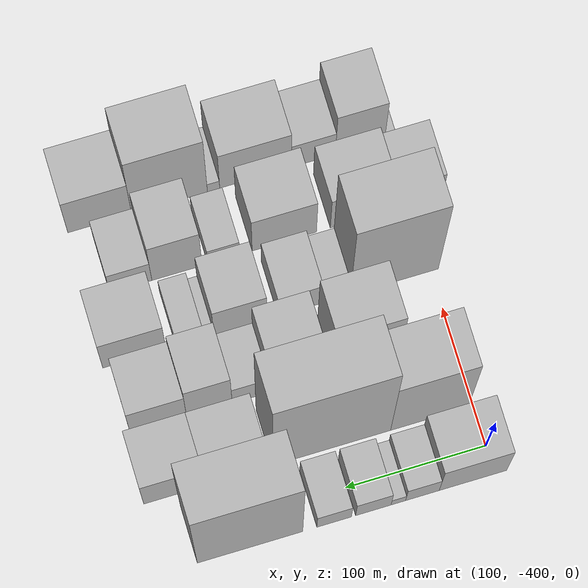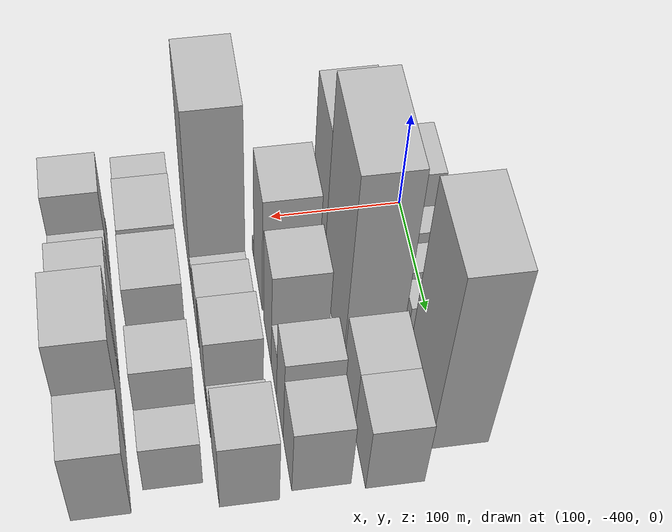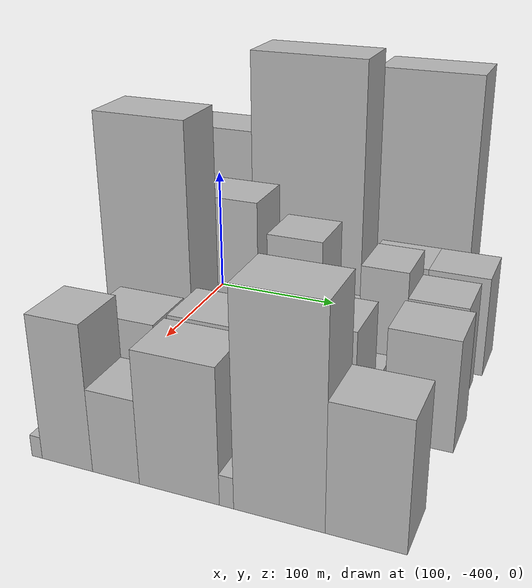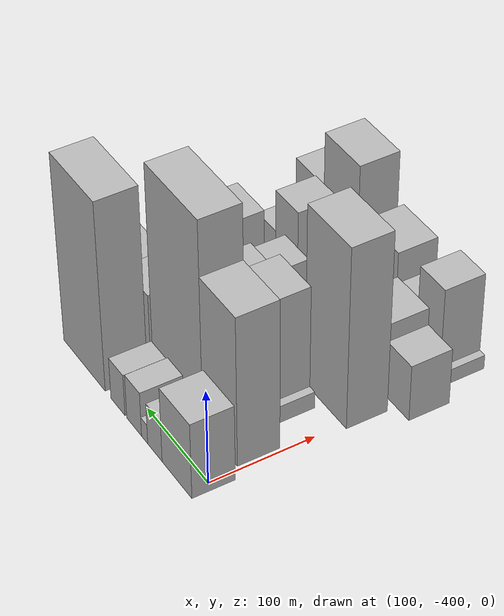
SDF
<sdf version="1.6">
 <world name="default">
  <model name="building_16">
   <static>1</static>
   <pose>100.0000 -384.2721 0 0.000000 0.000000 0.000000</pose>
   <link name="link">
    <pose>0 0 40.50 0 0 0</pose>
    <collision name="collision"><geometry><box><size>40.0000 48.1426 81.0000</size></box></geometry></collision>
    <visual name="visual">
     <cast_shadows>0</cast_shadows>
     <geometry><box><size>40.0000 48.1426 81.0000</size></box></geometry>
     <material>
      <script>
       <uri>model://HANNAS_wall/materials/scripts</uri>
       <uri>model://HANNAS_wall/materials/textures</uri>
       <name>vrc/HANNAS_wall</name>
      </script>
     </material>
    </visual>
   </link>
  </model>
  <model name="building_17">
   <static>1</static>
   <pose>100.0000 -348.2777 0 0.000000 0.000000 0.000000</pose>
   <link name="link">
    <pose>0 0 22.50 0 0 0</pose>
    <collision name="collision"><geometry><box><size>40.0000 23.8463 45.0000</size></box></geometry></collision>
    <visual name="visual">
     <cast_shadows>0</cast_shadows>
     <geometry><box><size>40.0000 23.8463 45.0000</size></box></geometry>
     <material>
      <script>
       <uri>model://HANNAS_wall/materials/scripts</uri>
       <uri>model://HANNAS_wall/materials/textures</uri>
       <name>vrc/HANNAS_wall</name>
      </script>
     </material>
    </visual>
   </link>
  </model>
  <model name="building_18">
   <static>1</static>
   <pose>100.0000 -331.1946 0 0.000000 0.000000 0.000000</pose>
   <link name="link">
    <pose>0 0 10.50 0 0 0</pose>
    <collision name="collision"><geometry><box><size>40.0000 10.3200 21.0000</size></box></geometry></collision>
    <visual name="visual">
     <cast_shadows>0</cast_shadows>
     <geometry><box><size>40.0000 10.3200 21.0000</size></box></geometry>
     <material>
      <script>
       <uri>model://HANNAS_wall/materials/scripts</uri>
       <uri>model://HANNAS_wall/materials/textures</uri>
       <name>vrc/HANNAS_wall</name>
      </script>
     </material>
    </visual>
   </link>
  </model>
  <model name="building_19">
   <static>1</static>
   <pose>100.0000 -313.4795 0 0.000000 0.000000 0.000000</pose>
   <link name="link">
    <pose>0 0 24.00 0 0 0</pose>
    <collision name="collision"><geometry><box><size>40.0000 25.1102 48.0000</size></box></geometry></collision>
    <visual name="visual">
     <cast_shadows>0</cast_shadows>
     <geometry><box><size>40.0000 25.1102 48.0000</size></box></geometry>
     <material>
      <script>
       <uri>model://HANNAS_wall/materials/scripts</uri>
       <uri>model://HANNAS_wall/materials/textures</uri>
       <name>vrc/HANNAS_wall</name>
      </script>
     </material>
    </visual>
   </link>
  </model>
  <model name="building_20">
   <static>1</static>
   <pose>100.0000 -285.6841 0 0.000000 0.000000 0.000000</pose>
   <link name="link">
    <pose>0 0 22.50 0 0 0</pose>
    <collision name="collision"><geometry><box><size>40.0000 24.4805 45.0000</size></box></geometry></collision>
    <visual name="visual">
     <cast_shadows>0</cast_shadows>
     <geometry><box><size>40.0000 24.4805 45.0000</size></box></geometry>
     <material>
      <script>
       <uri>model://HANNAS_wall/materials/scripts</uri>
       <uri>model://HANNAS_wall/materials/textures</uri>
       <name>vrc/HANNAS_wall</name>
      </script>
     </material>
    </visual>
   </link>
  </model>
  <model name="building_21">
   <static>1</static>
   <pose>100.0000 -226.2490 0 0.000000 0.000000 0.000000</pose>
   <link name="link">
    <pose>0 0 100.50 0 0 0</pose>
    <collision name="collision"><geometry><box><size>40.0000 74.3897 201.0000</size></box></geometry></collision>
    <visual name="visual">
     <cast_shadows>0</cast_shadows>
     <geometry><box><size>40.0000 74.3897 201.0000</size></box></geometry>
     <material>
      <script>
       <uri>model://HANNAS_wall/materials/scripts</uri>
       <uri>model://HANNAS_wall/materials/textures</uri>
       <name>vrc/HANNAS_wall</name>
      </script>
     </material>
    </visual>
   </link>
  </model>
  <model name="building_64">
   <static>1</static>
   <pose>149.0000 -368.4921 0 0.000000 0.000000 0.000000</pose>
   <link name="link">
    <pose>0 0 79.50 0 0 0</pose>
    <collision name="collision"><geometry><box><size>40.0000 55.3758 159.0000</size></box></geometry></collision>
    <visual name="visual">
     <cast_shadows>0</cast_shadows>
     <geometry><box><size>40.0000 55.3758 159.0000</size></box></geometry>
     <material>
      <script>
       <uri>model://HANNAS_wall/materials/scripts</uri>
       <uri>model://HANNAS_wall/materials/textures</uri>
       <name>vrc/HANNAS_wall</name>
      </script>
     </material>
    </visual>
   </link>
  </model>
  <model name="building_65">
   <static>1</static>
   <pose>149.0000 -298.9910 0 0.000000 0.000000 0.000000</pose>
   <link name="link">
    <pose>0 0 108.00 0 0 0</pose>
    <collision name="collision"><geometry><box><size>40.0000 83.6264 216.0000</size></box></geometry></collision>
    <visual name="visual">
     <cast_shadows>0</cast_shadows>
     <geometry><box><size>40.0000 83.6264 216.0000</size></box></geometry>
     <material>
      <script>
       <uri>model://HANNAS_wall/materials/scripts</uri>
       <uri>model://HANNAS_wall/materials/textures</uri>
       <name>vrc/HANNAS_wall</name>
      </script>
     </material>
    </visual>
   </link>
  </model>
  <model name="building_66">
   <static>1</static>
   <pose>149.0000 -230.9438 0 0.000000 0.000000 0.000000</pose>
   <link name="link">
    <pose>0 0 37.50 0 0 0</pose>
    <collision name="collision"><geometry><box><size>40.0000 44.4682 75.0000</size></box></geometry></collision>
    <visual name="visual">
     <cast_shadows>0</cast_shadows>
     <geometry><box><size>40.0000 44.4682 75.0000</size></box></geometry>
     <material>
      <script>
       <uri>model://HANNAS_wall/materials/scripts</uri>
       <uri>model://HANNAS_wall/materials/textures</uri>
       <name>vrc/HANNAS_wall</name>
      </script>
     </material>
    </visual>
   </link>
  </model>
  <model name="building_67">
   <static>1</static>
   <pose>149.0000 -187.2051 0 0.000000 0.000000 0.000000</pose>
   <link name="link">
    <pose>0 0 37.50 0 0 0</pose>
    <collision name="collision"><geometry><box><size>40.0000 43.0090 75.0000</size></box></geometry></collision>
    <visual name="visual">
     <cast_shadows>0</cast_shadows>
     <geometry><box><size>40.0000 43.0090 75.0000</size></box></geometry>
     <material>
      <script>
       <uri>model://HANNAS_wall/materials/scripts</uri>
       <uri>model://HANNAS_wall/materials/textures</uri>
       <name>vrc/HANNAS_wall</name>
      </script>
     </material>
    </visual>
   </link>
  </model>
  <model name="building_109">
   <static>1</static>
   <pose>198.0000 -367.1274 0 0.000000 0.000000 0.000000</pose>
   <link name="link">
    <pose>0 0 9.00 0 0 0</pose>
    <collision name="collision"><geometry><box><size>40.0000 7.8047 18.0000</size></box></geometry></collision>
    <visual name="visual">
     <cast_shadows>0</cast_shadows>
     <geometry><box><size>40.0000 7.8047 18.0000</size></box></geometry>
     <material>
      <script>
       <uri>model://HANNAS_wall/materials/scripts</uri>
       <uri>model://HANNAS_wall/materials/textures</uri>
       <name>vrc/HANNAS_wall</name>
      </script>
     </material>
    </visual>
   </link>
  </model>
  <model name="building_110">
   <static>1</static>
   <pose>198.0000 -339.6247 0 0.000000 0.000000 0.000000</pose>
   <link name="link">
    <pose>0 0 63.00 0 0 0</pose>
    <collision name="collision"><geometry><box><size>40.0000 47.2006 126.0000</size></box></geometry></collision>
    <visual name="visual">
     <cast_shadows>0</cast_shadows>
     <geometry><box><size>40.0000 47.2006 126.0000</size></box></geometry>
     <material>
      <script>
       <uri>model://HANNAS_wall/materials/scripts</uri>
       <uri>model://HANNAS_wall/materials/textures</uri>
       <name>vrc/HANNAS_wall</name>
      </script>
     </material>
    </visual>
   </link>
  </model>
  <model name="building_111">
   <static>1</static>
   <pose>198.0000 -289.2294 0 0.000000 0.000000 0.000000</pose>
   <link name="link">
    <pose>0 0 52.50 0 0 0</pose>
    <collision name="collision"><geometry><box><size>40.0000 39.5901 105.0000</size></box></geometry></collision>
    <visual name="visual">
     <cast_shadows>0</cast_shadows>
     <geometry><box><size>40.0000 39.5901 105.0000</size></box></geometry>
     <material>
      <script>
       <uri>model://HANNAS_wall/materials/scripts</uri>
       <uri>model://HANNAS_wall/materials/textures</uri>
       <name>vrc/HANNAS_wall</name>
      </script>
     </material>
    </visual>
   </link>
  </model>
  <model name="building_112">
   <static>1</static>
   <pose>198.0000 -256.1361 0 0.000000 0.000000 0.000000</pose>
   <link name="link">
    <pose>0 0 25.50 0 0 0</pose>
    <collision name="collision"><geometry><box><size>40.0000 26.5964 51.0000</size></box></geometry></collision>
    <visual name="visual">
     <cast_shadows>0</cast_shadows>
     <geometry><box><size>40.0000 26.5964 51.0000</size></box></geometry>
     <material>
      <script>
       <uri>model://HANNAS_wall/materials/scripts</uri>
       <uri>model://HANNAS_wall/materials/textures</uri>
       <name>vrc/HANNAS_wall</name>
      </script>
     </material>
    </visual>
   </link>
  </model>
  <model name="building_113">
   <static>1</static>
   <pose>198.0000 -226.6504 0 0.000000 0.000000 0.000000</pose>
   <link name="link">
    <pose>0 0 46.50 0 0 0</pose>
    <collision name="collision"><geometry><box><size>40.0000 32.3749 93.0000</size></box></geometry></collision>
    <visual name="visual">
     <cast_shadows>0</cast_shadows>
     <geometry><box><size>40.0000 32.3749 93.0000</size></box></geometry>
     <material>
      <script>
       <uri>model://HANNAS_wall/materials/scripts</uri>
       <uri>model://HANNAS_wall/materials/textures</uri>
       <name>vrc/HANNAS_wall</name>
      </script>
     </material>
    </visual>
   </link>
  </model>
  <model name="building_114">
   <static>1</static>
   <pose>198.0000 -190.4907 0 0.000000 0.000000 0.000000</pose>
   <link name="link">
    <pose>0 0 37.50 0 0 0</pose>
    <collision name="collision"><geometry><box><size>40.0000 39.9445 75.0000</size></box></geometry></collision>
    <visual name="visual">
     <cast_shadows>0</cast_shadows>
     <geometry><box><size>40.0000 39.9445 75.0000</size></box></geometry>
     <material>
      <script>
       <uri>model://HANNAS_wall/materials/scripts</uri>
       <uri>model://HANNAS_wall/materials/textures</uri>
       <name>vrc/HANNAS_wall</name>
      </script>
     </material>
    </visual>
   </link>
  </model>
  <model name="building_158">
   <static>1</static>
   <pose>247.0000 -373.7457 0 0.000000 0.000000 0.000000</pose>
   <link name="link">
    <pose>0 0 96.00 0 0 0</pose>
    <collision name="collision"><geometry><box><size>40.0000 63.3927 192.0000</size></box></geometry></collision>
    <visual name="visual">
     <cast_shadows>0</cast_shadows>
     <geometry><box><size>40.0000 63.3927 192.0000</size></box></geometry>
     <material>
      <script>
       <uri>model://HANNAS_wall/materials/scripts</uri>
       <uri>model://HANNAS_wall/materials/textures</uri>
       <name>vrc/HANNAS_wall</name>
      </script>
     </material>
    </visual>
   </link>
  </model>
  <model name="building_159">
   <static>1</static>
   <pose>247.0000 -332.1512 0 0.000000 0.000000 0.000000</pose>
   <link name="link">
    <pose>0 0 19.50 0 0 0</pose>
    <collision name="collision"><geometry><box><size>40.0000 19.7965 39.0000</size></box></geometry></collision>
    <visual name="visual">
     <cast_shadows>0</cast_shadows>
     <geometry><box><size>40.0000 19.7965 39.0000</size></box></geometry>
     <material>
      <script>
       <uri>model://HANNAS_wall/materials/scripts</uri>
       <uri>model://HANNAS_wall/materials/textures</uri>
       <name>vrc/HANNAS_wall</name>
      </script>
     </material>
    </visual>
   </link>
  </model>
  <model name="building_160">
   <static>1</static>
   <pose>247.0000 -306.2783 0 0.000000 0.000000 0.000000</pose>
   <link name="link">
    <pose>0 0 28.50 0 0 0</pose>
    <collision name="collision"><geometry><box><size>40.0000 31.9493 57.0000</size></box></geometry></collision>
    <visual name="visual">
     <cast_shadows>0</cast_shadows>
     <geometry><box><size>40.0000 31.9493 57.0000</size></box></geometry>
     <material>
      <script>
       <uri>model://HANNAS_wall/materials/scripts</uri>
       <uri>model://HANNAS_wall/materials/textures</uri>
       <name>vrc/HANNAS_wall</name>
      </script>
     </material>
    </visual>
   </link>
  </model>
  <model name="building_161">
   <static>1</static>
   <pose>247.0000 -263.3355 0 0.000000 0.000000 0.000000</pose>
   <link name="link">
    <pose>0 0 37.50 0 0 0</pose>
    <collision name="collision"><geometry><box><size>40.0000 37.9364 75.0000</size></box></geometry></collision>
    <visual name="visual">
     <cast_shadows>0</cast_shadows>
     <geometry><box><size>40.0000 37.9364 75.0000</size></box></geometry>
     <material>
      <script>
       <uri>model://HANNAS_wall/materials/scripts</uri>
       <uri>model://HANNAS_wall/materials/textures</uri>
       <name>vrc/HANNAS_wall</name>
      </script>
     </material>
    </visual>
   </link>
  </model>
  <model name="building_162">
   <static>1</static>
   <pose>247.0000 -240.6868 0 0.000000 0.000000 0.000000</pose>
   <link name="link">
    <pose>0 0 7.50 0 0 0</pose>
    <collision name="collision"><geometry><box><size>40.0000 7.3610 15.0000</size></box></geometry></collision>
    <visual name="visual">
     <cast_shadows>0</cast_shadows>
     <geometry><box><size>40.0000 7.3610 15.0000</size></box></geometry>
     <material>
      <script>
       <uri>model://HANNAS_wall/materials/scripts</uri>
       <uri>model://HANNAS_wall/materials/textures</uri>
       <name>vrc/HANNAS_wall</name>
      </script>
     </material>
    </visual>
   </link>
  </model>
  <model name="building_163">
   <static>1</static>
   <pose>247.0000 -227.1305 0 0.000000 0.000000 0.000000</pose>
   <link name="link">
    <pose>0 0 18.00 0 0 0</pose>
    <collision name="collision"><geometry><box><size>40.0000 19.7517 36.0000</size></box></geometry></collision>
    <visual name="visual">
     <cast_shadows>0</cast_shadows>
     <geometry><box><size>40.0000 19.7517 36.0000</size></box></geometry>
     <material>
      <script>
       <uri>model://HANNAS_wall/materials/scripts</uri>
       <uri>model://HANNAS_wall/materials/textures</uri>
       <name>vrc/HANNAS_wall</name>
      </script>
     </material>
    </visual>
   </link>
  </model>
  <model name="building_164">
   <static>1</static>
   <pose>247.0000 -187.7136 0 0.000000 0.000000 0.000000</pose>
   <link name="link">
    <pose>0 0 39.00 0 0 0</pose>
    <collision name="collision"><geometry><box><size>40.0000 45.0820 78.0000</size></box></geometry></collision>
    <visual name="visual">
     <cast_shadows>0</cast_shadows>
     <geometry><box><size>40.0000 45.0820 78.0000</size></box></geometry>
     <material>
      <script>
       <uri>model://HANNAS_wall/materials/scripts</uri>
       <uri>model://HANNAS_wall/materials/textures</uri>
       <name>vrc/HANNAS_wall</name>
      </script>
     </material>
    </visual>
   </link>
  </model>
  <model name="building_206">
   <static>1</static>
   <pose>296.0000 -406.4669 0 0.000000 0.000000 0.000000</pose>
   <link name="link">
    <pose>0 0 30.00 0 0 0</pose>
    <collision name="collision"><geometry><box><size>40.0000 35.0410 60.0000</size></box></geometry></collision>
    <visual name="visual">
     <cast_shadows>0</cast_shadows>
     <geometry><box><size>40.0000 35.0410 60.0000</size></box></geometry>
     <material>
      <script>
       <uri>model://HANNAS_wall/materials/scripts</uri>
       <uri>model://HANNAS_wall/materials/textures</uri>
       <name>vrc/HANNAS_wall</name>
      </script>
     </material>
    </visual>
   </link>
  </model>
  <model name="building_207">
   <static>1</static>
   <pose>296.0000 -365.8236 0 0.000000 0.000000 0.000000</pose>
   <link name="link">
    <pose>0 0 39.00 0 0 0</pose>
    <collision name="collision"><geometry><box><size>40.0000 46.2455 78.0000</size></box></geometry></collision>
    <visual name="visual">
     <cast_shadows>0</cast_shadows>
     <geometry><box><size>40.0000 46.2455 78.0000</size></box></geometry>
     <material>
      <script>
       <uri>model://HANNAS_wall/materials/scripts</uri>
       <uri>model://HANNAS_wall/materials/textures</uri>
       <name>vrc/HANNAS_wall</name>
      </script>
     </material>
    </visual>
   </link>
  </model>
  <model name="building_208">
   <static>1</static>
   <pose>296.0000 -309.5665 0 0.000000 0.000000 0.000000</pose>
   <link name="link">
    <pose>0 0 43.50 0 0 0</pose>
    <collision name="collision"><geometry><box><size>40.0000 46.2688 87.0000</size></box></geometry></collision>
    <visual name="visual">
     <cast_shadows>0</cast_shadows>
     <geometry><box><size>40.0000 46.2688 87.0000</size></box></geometry>
     <material>
      <script>
       <uri>model://HANNAS_wall/materials/scripts</uri>
       <uri>model://HANNAS_wall/materials/textures</uri>
       <name>vrc/HANNAS_wall</name>
      </script>
     </material>
    </visual>
   </link>
  </model>
  <model name="building_209">
   <static>1</static>
   <pose>296.0000 -265.9965 0 0.000000 0.000000 0.000000</pose>
   <link name="link">
    <pose>0 0 19.50 0 0 0</pose>
    <collision name="collision"><geometry><box><size>40.0000 22.8713 39.0000</size></box></geometry></collision>
    <visual name="visual">
     <cast_shadows>0</cast_shadows>
     <geometry><box><size>40.0000 22.8713 39.0000</size></box></geometry>
     <material>
      <script>
       <uri>model://HANNAS_wall/materials/scripts</uri>
       <uri>model://HANNAS_wall/materials/textures</uri>
       <name>vrc/HANNAS_wall</name>
      </script>
     </material>
    </visual>
   </link>
  </model>
  <model name="building_210">
   <static>1</static>
   <pose>296.0000 -232.5227 0 0.000000 0.000000 0.000000</pose>
   <link name="link">
    <pose>0 0 49.50 0 0 0</pose>
    <collision name="collision"><geometry><box><size>40.0000 36.0762 99.0000</size></box></geometry></collision>
    <visual name="visual">
     <cast_shadows>0</cast_shadows>
     <geometry><box><size>40.0000 36.0762 99.0000</size></box></geometry>
     <material>
      <script>
       <uri>model://HANNAS_wall/materials/scripts</uri>
       <uri>model://HANNAS_wall/materials/textures</uri>
       <name>vrc/HANNAS_wall</name>
      </script>
     </material>
    </visual>
   </link>
  </model>
  <model name="building_211">
   <static>1</static>
   <pose>296.0000 -199.3762 0 0.000000 0.000000 0.000000</pose>
   <link name="link">
    <pose>0 0 27.00 0 0 0</pose>
    <collision name="collision"><geometry><box><size>40.0000 30.2170 54.0000</size></box></geometry></collision>
    <visual name="visual">
     <cast_shadows>0</cast_shadows>
     <geometry><box><size>40.0000 30.2170 54.0000</size></box></geometry>
     <material>
      <script>
       <uri>model://HANNAS_wall/materials/scripts</uri>
       <uri>model://HANNAS_wall/materials/textures</uri>
       <name>vrc/HANNAS_wall</name>
      </script>
     </material>
    </visual>
   </link>
  </model>
  <model name="building_255">
   <static>1</static>
   <pose>345.0000 -400.7184 0 0.000000 0.000000 0.000000</pose>
   <link name="link">
    <pose>0 0 7.50 0 0 0</pose>
    <collision name="collision"><geometry><box><size>40.0000 7.4019 15.0000</size></box></geometry></collision>
    <visual name="visual">
     <cast_shadows>0</cast_shadows>
     <geometry><box><size>40.0000 7.4019 15.0000</size></box></geometry>
     <material>
      <script>
       <uri>model://HANNAS_wall/materials/scripts</uri>
       <uri>model://HANNAS_wall/materials/textures</uri>
       <name>vrc/HANNAS_wall</name>
      </script>
     </material>
    </visual>
   </link>
  </model>
  <model name="building_256">
   <static>1</static>
   <pose>345.0000 -379.1298 0 0.000000 0.000000 0.000000</pose>
   <link name="link">
    <pose>0 0 49.50 0 0 0</pose>
    <collision name="collision"><geometry><box><size>40.0000 35.7753 99.0000</size></box></geometry></collision>
    <visual name="visual">
     <cast_shadows>0</cast_shadows>
     <geometry><box><size>40.0000 35.7753 99.0000</size></box></geometry>
     <material>
      <script>
       <uri>model://HANNAS_wall/materials/scripts</uri>
       <uri>model://HANNAS_wall/materials/textures</uri>
       <name>vrc/HANNAS_wall</name>
      </script>
     </material>
    </visual>
   </link>
  </model>
  <model name="building_257">
   <static>1</static>
   <pose>345.0000 -345.3256 0 0.000000 0.000000 0.000000</pose>
   <link name="link">
    <pose>0 0 28.50 0 0 0</pose>
    <collision name="collision"><geometry><box><size>40.0000 31.8331 57.0000</size></box></geometry></collision>
    <visual name="visual">
     <cast_shadows>0</cast_shadows>
     <geometry><box><size>40.0000 31.8331 57.0000</size></box></geometry>
     <material>
      <script>
       <uri>model://HANNAS_wall/materials/scripts</uri>
       <uri>model://HANNAS_wall/materials/textures</uri>
       <name>vrc/HANNAS_wall</name>
      </script>
     </material>
    </visual>
   </link>
  </model>
  <model name="building_258">
   <static>1</static>
   <pose>345.0000 -303.5461 0 0.000000 0.000000 0.000000</pose>
   <link name="link">
    <pose>0 0 45.00 0 0 0</pose>
    <collision name="collision"><geometry><box><size>40.0000 51.7259 90.0000</size></box></geometry></collision>
    <visual name="visual">
     <cast_shadows>0</cast_shadows>
     <geometry><box><size>40.0000 51.7259 90.0000</size></box></geometry>
     <material>
      <script>
       <uri>model://HANNAS_wall/materials/scripts</uri>
       <uri>model://HANNAS_wall/materials/textures</uri>
       <name>vrc/HANNAS_wall</name>
      </script>
     </material>
    </visual>
   </link>
  </model>
  <model name="building_259">
   <static>1</static>
   <pose>345.0000 -273.2544 0 0.000000 0.000000 0.000000</pose>
   <link name="link">
    <pose>0 0 10.50 0 0 0</pose>
    <collision name="collision"><geometry><box><size>40.0000 8.8574 21.0000</size></box></geometry></collision>
    <visual name="visual">
     <cast_shadows>0</cast_shadows>
     <geometry><box><size>40.0000 8.8574 21.0000</size></box></geometry>
     <material>
      <script>
       <uri>model://HANNAS_wall/materials/scripts</uri>
       <uri>model://HANNAS_wall/materials/textures</uri>
       <name>vrc/HANNAS_wall</name>
      </script>
     </material>
    </visual>
   </link>
  </model>
  <model name="building_260">
   <static>1</static>
   <pose>345.0000 -241.5630 0 0.000000 0.000000 0.000000</pose>
   <link name="link">
    <pose>0 0 70.50 0 0 0</pose>
    <collision name="collision"><geometry><box><size>40.0000 54.5254 141.0000</size></box></geometry></collision>
    <visual name="visual">
     <cast_shadows>0</cast_shadows>
     <geometry><box><size>40.0000 54.5254 141.0000</size></box></geometry>
     <material>
      <script>
       <uri>model://HANNAS_wall/materials/scripts</uri>
       <uri>model://HANNAS_wall/materials/textures</uri>
       <name>vrc/HANNAS_wall</name>
      </script>
     </material>
    </visual>
   </link>
  </model>
  <model name="building_261">
   <static>1</static>
   <pose>345.0000 -191.3598 0 0.000000 0.000000 0.000000</pose>
   <link name="link">
    <pose>0 0 42.00 0 0 0</pose>
    <collision name="collision"><geometry><box><size>40.0000 45.8811 84.0000</size></box></geometry></collision>
    <visual name="visual">
     <cast_shadows>0</cast_shadows>
     <geometry><box><size>40.0000 45.8811 84.0000</size></box></geometry>
     <material>
      <script>
       <uri>model://HANNAS_wall/materials/scripts</uri>
       <uri>model://HANNAS_wall/materials/textures</uri>
       <name>vrc/HANNAS_wall</name>
      </script>
     </material>
    </visual>
   </link>
  </model>
 </world>
</sdf>
